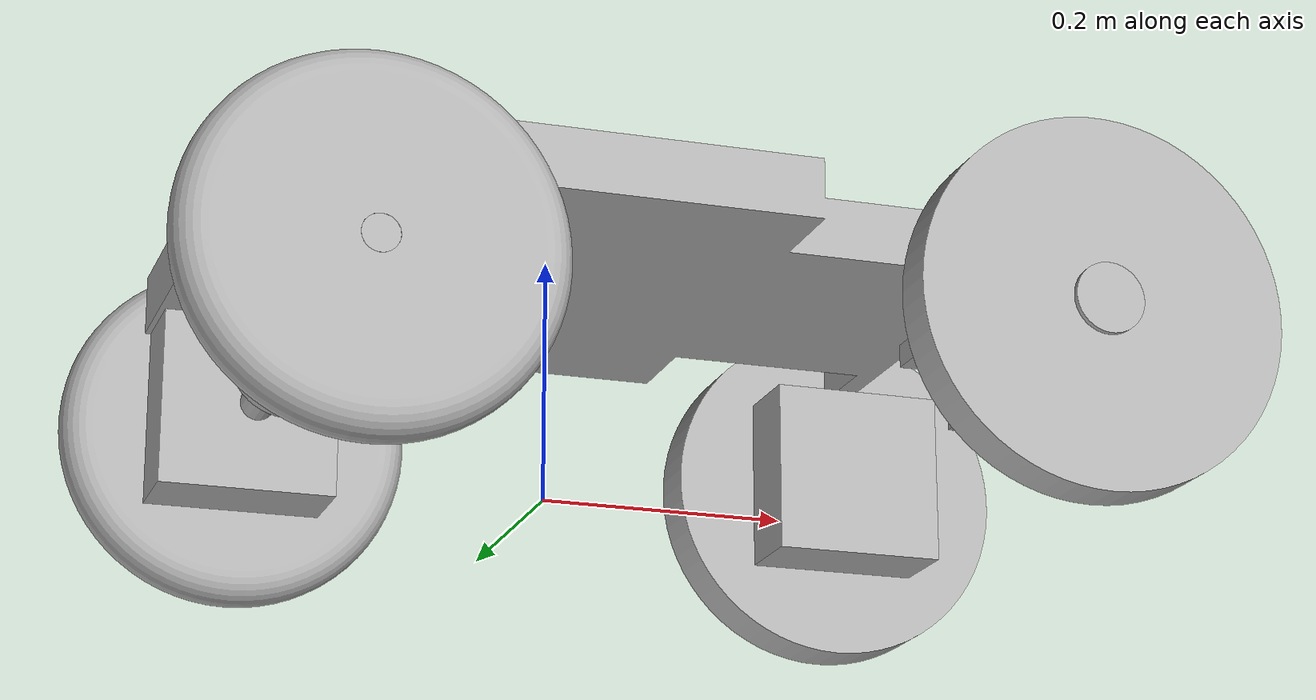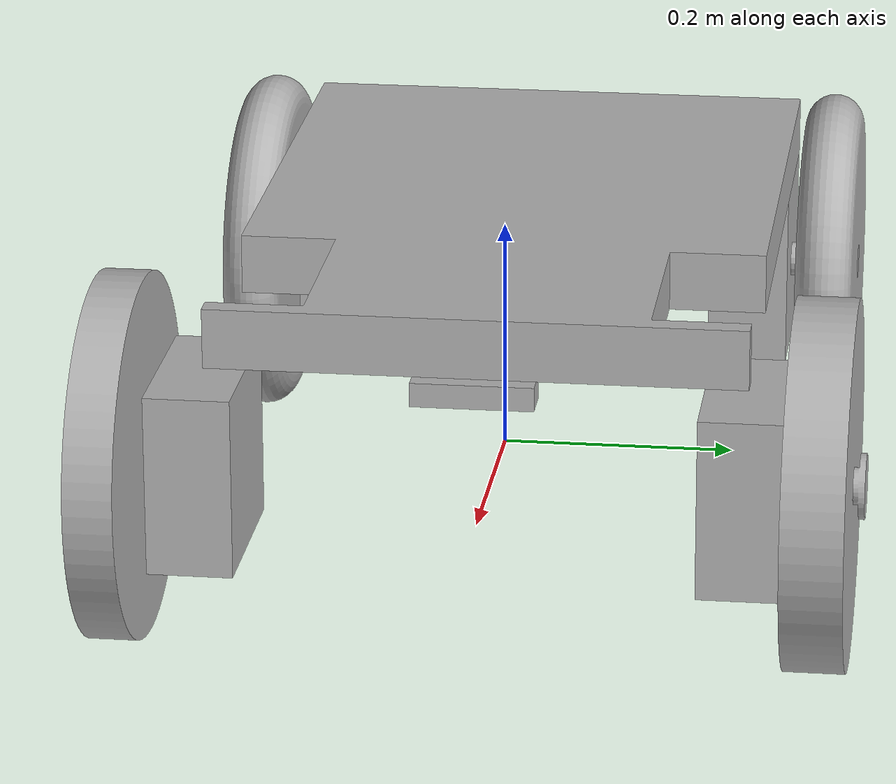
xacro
<?xml version="1.0" ?>
<robot name="four_wheels_bot" xmlns:xacro="http://www.ros.org/wiki/xacro">

<xacro:include filename="$(find steer_wheel_bot_description)/urdf/materials1.xacro" />
<xacro:include filename="$(find steer_wheel_bot_description)/urdf/four_wheels_bot.trans" />
<xacro:include filename="$(find steer_wheel_bot_description)/urdf/four_wheels_bot.gazebo" />
<link name="base_link">
  <inertial>
    <origin rpy="0 0 0" xyz="0.011054976585872938 0.017552902481291224 0.212105481350772"/>
    <mass value="99.85199999999999"/>
    <inertia ixx="1.452391" ixy="-0.0" ixz="0.0" iyy="3.212794" iyz="0.0" izz="4.62358"/>
  </inertial>
  <visual>
    <origin rpy="0 0 0" xyz="0 0 0"/>
    <geometry>
      <mesh filename="package://steer_wheel_bot_description/meshes/four_wheels/base_link.stl" scale="0.001 0.001 0.001"/>
    </geometry>
    <material name="silver"/>
  </visual>
  <collision>
    <origin rpy="0 0 0" xyz="0 0 0"/>
    <geometry>
      <mesh filename="package://steer_wheel_bot_description/meshes/four_wheels/base_link.stl" scale="0.001 0.001 0.001"/>
    </geometry>
  </collision>
</link>

<link name="front_right_steer_1">
  <inertial>
    <origin rpy="0 0 0" xyz="0.00015830225079638272 -0.0022071219028055034 -0.07499951864922846"/>
    <mass value="12.767354822313434"/>
    <inertia ixx="0.030317" ixy="0.000136" ixz="-0.0" iyy="0.046447" iyz="0.0" izz="0.030326"/>
  </inertial>
  <visual>
    <origin rpy="0 0 0" xyz="-0.354225 0.202447 -0.187105"/>
    <geometry>
      <mesh filename="package://steer_wheel_bot_description/meshes/four_wheels/front_right_steer_1.stl" scale="0.001 0.001 0.001"/>
    </geometry>
    <material name="silver"/>
  </visual>
  <collision>
    <origin rpy="0 0 0" xyz="-0.354225 0.202447 -0.187105"/>
    <geometry>
      <mesh filename="package://steer_wheel_bot_description/meshes/four_wheels/front_right_steer_1.stl" scale="0.001 0.001 0.001"/>
    </geometry>
  </collision>
</link>

<link name="front_left_steer_1">
  <inertial>
    <origin rpy="0 0 0" xyz="0.00015375715474630347 0.002122169438952909 -0.07499951864922788"/>
    <mass value="12.755381430072196"/>
    <inertia ixx="0.030214" ixy="-0.000131" ixz="-0.0" iyy="0.046438" iyz="0.0" izz="0.030224"/>
  </inertial>
  <visual>
    <origin rpy="0 0 0" xyz="-0.354225 -0.237553 -0.187105"/>
    <geometry>
      <mesh filename="package://steer_wheel_bot_description/meshes/four_wheels/front_left_steer_1.stl" scale="0.001 0.001 0.001"/>
    </geometry>
    <material name="silver"/>
  </visual>
  <collision>
    <origin rpy="0 0 0" xyz="-0.354225 -0.237553 -0.187105"/>
    <geometry>
      <mesh filename="package://steer_wheel_bot_description/meshes/four_wheels/front_left_steer_1.stl" scale="0.001 0.001 0.001"/>
    </geometry>
  </collision>
</link>

<link name="front_steer_1">
  <inertial>
    <origin rpy="0 0 0" xyz="2.409968419270214e-07 -9.751870870544632e-08 -0.009999518649228017"/>
    <mass value="0"/>
    <inertia ixx="0.000408" ixy="-0.0" ixz="0.0" iyy="5.1e-05" iyz="0.0" izz="0.000428"/>
  </inertial>
  <visual>
    <origin rpy="0 0 0" xyz="-0.354225 -0.017553 -0.187105"/>
    <geometry>
      <mesh filename="package://steer_wheel_bot_description/meshes/four_wheels/front_steer_1.stl" scale="0.001 0.001 0.001"/>
    </geometry>
    <material name="silver"/>
  </visual>
  <collision>
    <origin rpy="0 0 0" xyz="-0.354225 -0.017553 -0.187105"/>
    <geometry>
      <mesh filename="package://steer_wheel_bot_description/meshes/four_wheels/front_steer_1.stl" scale="0.001 0.001 0.001"/>
    </geometry>
  </collision>
</link>

<link name="rear_shaft_1">
  <inertial>
    <origin rpy="0 0 0" xyz="0.0004936789199174729 0.1499999024812912 -0.07499951864922799"/>
    <mass value="27.058011970249243"/>
    <inertia ixx="0.957192" ixy="-0.0" ixz="0.0" iyy="0.09306" iyz="0.0" izz="0.957262"/>
  </inertial>
  <visual>
    <origin rpy="0 0 0" xyz="0.205775 0.132447 -0.187105"/>
    <geometry>
      <mesh filename="package://steer_wheel_bot_description/meshes/four_wheels/rear_shaft_1.stl" scale="0.001 0.001 0.001"/>
    </geometry>
    <material name="silver"/>
  </visual>
  <collision>
    <origin rpy="0 0 0" xyz="0.205775 0.132447 -0.187105"/>
    <geometry>
      <mesh filename="package://steer_wheel_bot_description/meshes/four_wheels/rear_shaft_1.stl" scale="0.001 0.001 0.001"/>
    </geometry>
  </collision>
</link>

<link name="rear_wheel_1">
  <inertial>
    <origin rpy="0 0 0" xyz="2.178908632133325e-07 -0.02500009751870822 4.813507718248733e-07"/>
    <mass value="0"/>
    <inertia ixx="0.002495" ixy="-0.0" ixz="0.0" iyy="0.003822" iyz="0.0" izz="0.002495"/>
  </inertial>
  <visual>
    <origin rpy="0 0 0" xyz="0.200046 -0.042553 -0.112105"/>
    <geometry>
      <mesh filename="package://steer_wheel_bot_description/meshes/four_wheels/rear_wheel_1.stl" scale="0.001 0.001 0.001"/>
    </geometry>
    <material name="silver"/>
  </visual>
  <collision>
    <origin rpy="0 0 0" xyz="0.200046 -0.042553 -0.112105"/>
    <geometry>
      <mesh filename="package://steer_wheel_bot_description/meshes/four_wheels/rear_wheel_1.stl" scale="0.001 0.001 0.001"/>
    </geometry>
  </collision>
</link>

<link name="rear_right_wheel_1">
  <inertial>
    <origin rpy="0 0 0" xyz="2.178910193939565e-07 -0.02500009751870899 4.813507572948295e-07"/>
    <mass value="25.5559814172849"/>
    <inertia ixx="0.141024" ixy="-0.0" ixz="0.0" iyy="0.272116" iyz="0.0" izz="0.141024"/>
  </inertial>
  <visual>
    <origin rpy="0 0 0" xyz="0.200046 0.212447 -0.112105"/>
    <geometry>
      <mesh filename="package://steer_wheel_bot_description/meshes/four_wheels/rear_right_wheel_1.stl" scale="0.001 0.001 0.001"/>
    </geometry>
    <material name="silver"/>
  </visual>
  <collision>
    <origin rpy="0 0 0" xyz="0.200046 0.212447 -0.112105"/>
    <geometry>
      <mesh filename="package://steer_wheel_bot_description/meshes/four_wheels/rear_right_wheel_1.stl" scale="0.001 0.001 0.001"/>
    </geometry>
  </collision>
</link>

<link name="rear_leaft_wheel_1">
  <inertial>
    <origin rpy="0 0 0" xyz="2.1789100132507677e-07 0.024999902481292052 4.813507718803844e-07"/>
    <mass value="25.555981417284887"/>
    <inertia ixx="0.141024" ixy="-0.0" ixz="0.0" iyy="0.272116" iyz="-0.0" izz="0.141024"/>
  </inertial>
  <visual>
    <origin rpy="0 0 0" xyz="0.200046 -0.247553 -0.112105"/>
    <geometry>
      <mesh filename="package://steer_wheel_bot_description/meshes/four_wheels/rear_left_wheel_1.stl" scale="0.001 0.001 0.001"/>
    </geometry>
    <material name="silver"/>
  </visual>
  <collision>
    <origin rpy="0 0 0" xyz="0.200046 -0.247553 -0.112105"/>
    <geometry>
      <mesh filename="package://steer_wheel_bot_description/meshes/four_wheels/rear_left_wheel_1.stl" scale="0.001 0.001 0.001"/>
    </geometry>
  </collision>
</link>

<link name="front_right_wheel_1">
  <inertial>
    <origin rpy="0 0 0" xyz="2.4099682743861095e-07 -0.020000097518709264 4.813507659268135e-07"/>
    <mass value="21.97339857663576"/>
    <inertia ixx="0.127766" ixy="0.0" ixz="0.0" iyy="0.249673" iyz="0.0" izz="0.127766"/>
  </inertial>
  <visual>
    <origin rpy="0 0 0" xyz="-0.359225 0.247447 -0.112105"/>
    <geometry>
      <mesh filename="package://steer_wheel_bot_description/meshes/four_wheels/front_right_wheel_1.stl" scale="0.001 0.001 0.001"/>
    </geometry>
    <material name="silver"/>
  </visual>
  <collision>
    <origin rpy="0 0 0" xyz="-0.359225 0.247447 -0.112105"/>
    <geometry>
      <mesh filename="package://steer_wheel_bot_description/meshes/four_wheels/front_right_wheel_1.stl" scale="0.001 0.001 0.001"/>
    </geometry>
  </collision>
</link>

<link name="front_left_wheel_1">
  <inertial>
    <origin rpy="0 0 0" xyz="2.409968358207948e-07 0.024999902481291025 4.813507576834075e-07"/>
    <mass value="27.4667482207947"/>
    <inertia ixx="0.161768" ixy="-0.0" ixz="0.0" iyy="0.312091" iyz="0.0" izz="0.161768"/>
  </inertial>
  <visual>
    <origin rpy="0 0 0" xyz="-0.359225 -0.272553 -0.112105"/>
    <geometry>
      <mesh filename="package://steer_wheel_bot_description/meshes/four_wheels/front_left_wheel_1.stl" scale="0.001 0.001 0.001"/>
    </geometry>
    <material name="silver"/>
  </visual>
  <collision>
    <origin rpy="0 0 0" xyz="-0.359225 -0.272553 -0.112105"/>
    <geometry>
      <mesh filename="package://steer_wheel_bot_description/meshes/four_wheels/front_left_wheel_1.stl" scale="0.001 0.001 0.001"/>
    </geometry>
  </collision>
</link>

<joint name="front_right_steer_joint" type="revolute">
  <origin rpy="0 0 0" xyz="0.354225 -0.202447 0.187105"/>
  <parent link="base_link"/>
  <child link="front_right_steer_1"/>
  <axis xyz="0.0 0.0 1.0"/>
  <limit effort="100" lower="-0.698132" upper="0.698132" velocity="100"/>
</joint>

<joint name="front_left_steer_joint" type="revolute">
  <origin rpy="0 0 0" xyz="0.354225 0.237553 0.187105"/>
  <parent link="base_link"/>
  <child link="front_left_steer_1"/>
  <axis xyz="-0.0 -0.0 1.0"/>
  <limit effort="100" lower="-0.698132" upper="0.698132" velocity="100"/>
</joint>

<joint name="front_steer_joint" type="continuous">
  <origin rpy="0 0 0" xyz="0.354225 0.017553 0.187105"/>
  <parent link="base_link"/>
  <child link="front_steer_1"/>
  <axis xyz="-0.0 -0.0 -1.0"/>
</joint>

<joint name="Rigid5" type="fixed">
  <origin rpy="0 0 0" xyz="-0.205775 -0.132447 0.187105"/>
  <parent link="base_link"/>
  <child link="rear_shaft_1"/>
</joint>

<joint name="rear_wheel_joint" type="continuous">
  <origin rpy="0 0 0" xyz="0.005729 0.175 -0.075"/>
  <parent link="rear_shaft_1"/>
  <child link="rear_wheel_1"/>
  <axis xyz="0.0 1.0 -0.0"/>
</joint>

<joint name="rear_right_wheel_joint" type="continuous">
  <origin rpy="0 0 0" xyz="0.005729 -0.08 -0.075"/>
  <parent link="rear_shaft_1"/>
  <child link="rear_right_wheel_1"/>
  <axis xyz="0.0 1.0 -0.0"/>
</joint>

<joint name="rear_left_wheel_joint" type="continuous">
  <origin rpy="0 0 0" xyz="0.005729 0.38 -0.075"/>
  <parent link="rear_shaft_1"/>
  <child link="rear_leaft_wheel_1"/>
  <axis xyz="0.0 1.0 -0.0"/>
</joint>

<joint name="front_right_wheel_joint" type="continuous">
  <origin rpy="0 0 0" xyz="0.005 -0.045 -0.075"/>
  <parent link="front_right_steer_1"/>
  <child link="front_right_wheel_1"/>
  <axis xyz="0.0 1.0 -0.0"/>
</joint>

<joint name="front_left_wheel_joint" type="continuous">
  <origin rpy="0 0 0" xyz="0.005 0.035 -0.075"/>
  <parent link="front_left_steer_1"/>
  <child link="front_left_wheel_1"/>
  <axis xyz="0.0 1.0 -0.0"/>
</joint>

</robot>

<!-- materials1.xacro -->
<robot name="four_wheels_bot" xmlns:xacro="http://www.ros.org/wiki/xacro" >

<material name="silver">
  <color rgba="0.700 0.700 0.700 1.000"/>
</material>

</robot>

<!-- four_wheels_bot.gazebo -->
<robot name="four_wheels_bot" xmlns:xacro="http://www.ros.org/wiki/xacro" >

<xacro:property name="body_color" value="Gazebo/Silver" />

<gazebo>
  <plugin filename="libgazebo_ros_control.so" name="control"/>
</gazebo>
  <xacro:property name="robot_namespace" value="/four_wheels_bot"/>

  <!-- Gazebo plugins -->
  <gazebo>
    <!-- Load ros_control plugin using the steer_bot_hardware_gazebo
    implementation of the hardware_interface::RobotHW -->
    <plugin name="gazebo_ros_control" filename="libgazebo_ros_control.so">
      <robotNamespace>${robot_namespace}</robotNamespace>
      <robotSimType>steer_bot_hardware_gazebo/SteerBotHardwareGazebo</robotSimType>
      <legacyModeNS>false</legacyModeNS>
    </plugin>
  </gazebo>

<gazebo reference="base_link">
  <material>${body_color}</material>
  <mu1>0.2</mu1>
  <mu2>0.2</mu2>
  <selfCollide>true</selfCollide>
  <gravity>true</gravity>
</gazebo>

<gazebo reference="front_right_steer_1">
  <material>${body_color}</material>
  <mu1>0.2</mu1>
  <mu2>0.2</mu2>
  <selfCollide>true</selfCollide>
</gazebo>

<gazebo reference="front_left_steer_1">
  <material>${body_color}</material>
  <mu1>0.2</mu1>
  <mu2>0.2</mu2>
  <selfCollide>true</selfCollide>
</gazebo>

<gazebo reference="front_steer_1">
  <material>${body_color}</material>
  <mu1>0.2</mu1>
  <mu2>0.2</mu2>
  <selfCollide>true</selfCollide>
</gazebo>

<gazebo reference="rear_shaft_1">
  <material>${body_color}</material>
  <mu1>0.2</mu1>
  <mu2>0.2</mu2>
  <selfCollide>true</selfCollide>
</gazebo>

<gazebo reference="rear_wheel_1">
  <material>${body_color}</material>
  <mu1>0.2</mu1>
  <mu2>0.2</mu2>
  <selfCollide>true</selfCollide>
</gazebo>

<gazebo reference="rear_right_wheel_1">
  <material>${body_color}</material>
  <mu1>0.2</mu1>
  <mu2>0.2</mu2>
  <selfCollide>true</selfCollide>
</gazebo>

<gazebo reference="rear_leaft_wheel_1">
  <material>${body_color}</material>
  <mu1>0.2</mu1>
  <mu2>0.2</mu2>
  <selfCollide>true</selfCollide>
</gazebo>

<gazebo reference="front_right_wheel_1">
  <material>${body_color}</material>
  <mu1>0.2</mu1>
  <mu2>0.2</mu2>
  <selfCollide>true</selfCollide>
</gazebo>

<gazebo reference="front_left_wheel_1">
  <material>${body_color}</material>
  <mu1>0.2</mu1>
  <mu2>0.2</mu2>
  <selfCollide>true</selfCollide>
</gazebo>

</robot>
